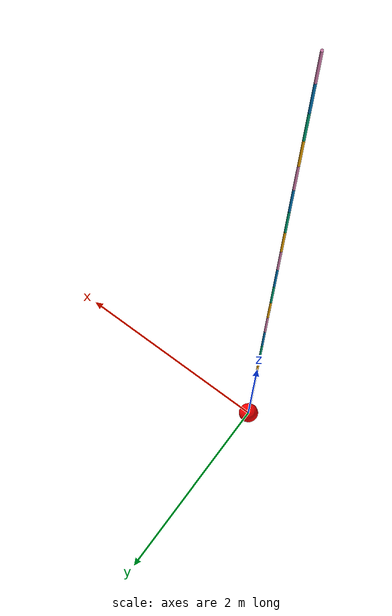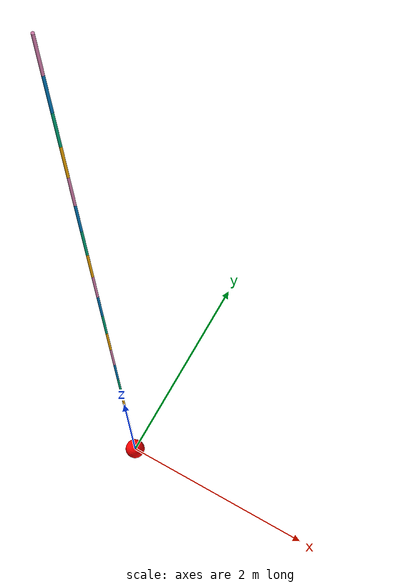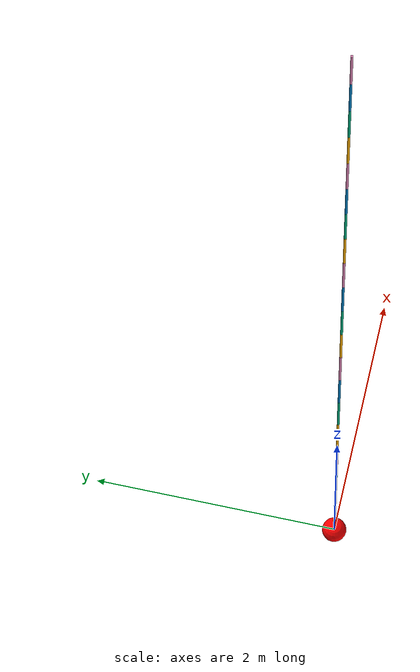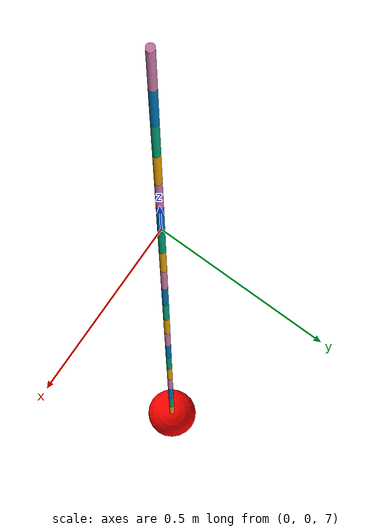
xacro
<?xml version="1.0"?>
<robot xmlns:xacro="http://www.ros.org/wiki/xacro" name="acts_system">

  <xacro:include filename="$(find acts_simulator)/urdf/components/cable_component.xacro" />
  <xacro:include filename="components/pulley.xacro" />

  <link name="world"/>

  <xacro:pulley
    prefix="cable1_"
    parent_link="world" />

  <link name="base_x_link"><inertial><mass value="0.01"/>
    <inertia ixx="1e-5" ixy="0" ixz="0" iyy="1e-5" iyz="0" izz="1e-5"/> </inertial>
  </link>

  <joint name="joint_pulley_x" type="prismatic">
    <parent link="cable1_base_z_link"/>
    <child link="base_x_link"/>
    <origin xyz="0 0 0.0" rpy="0 0 0"/><axis xyz="1 0 0"/>
    <limit effort="1000.0" lower="-10.0" upper="10.0" velocity="2.0"/>
  </joint>

  <link name="base_y_link">
    <inertial>
      <mass value="0.01"/>
      <inertia ixx="1e-5" ixy="0" ixz="0" iyy="1e-5" iyz="0" izz="1e-5"/>
    </inertial>
  </link>

  <joint name="joint_pulley_y" type="prismatic">
    <parent link="base_x_link"/>
    <child link="base_y_link"/>
    <origin xyz="0 0 0" rpy="0 0 0"/><axis xyz="0 1 0"/>
    <limit effort="1000.0" lower="-10.0" upper="10.0" velocity="2.0"/>
  </joint>

  <link name="base_z_link">
    <inertial>
      <mass value="0.01"/>
      <inertia ixx="1e-5" ixy="0" ixz="0" iyy="1e-5" iyz="0" izz="1e-5"/>
    </inertial>
  </link>

  <joint name="joint_pulley_z" type="prismatic">
    <parent link="base_y_link"/>
    <child link="base_z_link"/>
    <origin xyz="0 0 0" rpy="0 0 0"/>
    <axis xyz="0 0 1"/>
    <limit effort="1000.0" lower="-1.2" upper="10.0" velocity="2.0"/>
  </joint>

  <xacro:uav_cable prefix="" parent_link="base_z_link" is_flexible="true" segments="20" length="10" radius="0.01" mass="0.1" />

  <ros2_control name="GazeboSimSystem" type="system">
    <hardware><plugin>gz_ros2_control/GazeboSimSystem</plugin></hardware>
    <joint name="joint_pulley_x"><command_interface name="position"/><state_interface name="position"/></joint>
    <joint name="joint_pulley_y"><command_interface name="position"/><state_interface name="position"/></joint>
    <joint name="joint_pulley_z"><command_interface name="position"/><state_interface name="position"/></joint>
  </ros2_control>

  <gazebo>
    <plugin name="gz_ros2_control::GazeboSimROS2ControlPlugin" filename="libgz_ros2_control-system.so">
      <parameters>$(find acts_simulator)/config/cable_controller.yaml</parameters>
    </plugin>
  </gazebo>
</robot>

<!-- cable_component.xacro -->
<robot xmlns:xacro="http://www.ros.org/wiki/xacro">

  <xacro:macro name="cylinder_inertia" params="m r h">
    <inertial>
      <mass value="${m}"/>
      <inertia ixx="${(m/12) * (3*r*r + h*h)}" ixy="0.0" ixz="0.0"
               iyy="${(m/12) * (3*r*r + h*h)}" iyz="0.0"
               izz="${(m/2) * (r*r)}"/>
    </inertial>
  </xacro:macro>

<xacro:macro name="flexible_chain_generator" params="prefix parent cable_roll:=0 cable_pitch:=0 cable_yaw:=0 current_num total_num cable_len rad m type:='uav'">

  <xacro:property name="dir" value="${-1 if type == 'ugv' else 1}" />

  <link name="${prefix}virtual_${current_num}">
    <inertial>
      <mass value="0.0001"/>
      <inertia ixx="1e-6" ixy="0" ixz="0" iyy="1e-6" iyz="0" izz="1e-6"/>
    </inertial>
  </link>

  <joint name="${prefix}joint_x_${current_num}" type="continuous">
    <parent link="${parent}"/>
    <child link="${prefix}virtual_${current_num}"/>
    <origin xyz="0 0 ${current_num == 1 and 0 or (cable_len * dir)}"
            rpy="${current_num == 1 and cable_roll or 0}
                 ${current_num == 1 and cable_pitch or 0}
                 ${current_num == 1 and cable_yaw or 0}"/>
    <axis xyz="1 0 0"/>
    <dynamics damping="0.01" friction="0.001"/>
  </joint>

  <link name="${prefix}link_${current_num}">
    <xacro:cylinder_inertia m="${m}" r="${rad}" h="${cable_len}" />
    <visual>
      <origin xyz="0 0 ${-cable_len / 2.0 * dir}"/>
      <geometry><cylinder radius="${rad}" length="${cable_len}"/></geometry>
    </visual>
  </link>

  <joint name="${prefix}joint_y_${current_num}" type="continuous">
    <parent link="${prefix}virtual_${current_num}"/>
    <child link="${prefix}link_${current_num}"/>
    <axis xyz="0 1 0"/>
    <dynamics damping="0.01" friction="0.001"/>
  </joint>

  <xacro:if value="${current_num &lt; total_num}">
    <xacro:flexible_chain_generator
      prefix="${prefix}"
      parent="${prefix}link_${current_num}"
      cable_roll="0" cable_pitch="0" cable_yaw="0"
      current_num="${current_num + 1}"
      total_num="${total_num}"
      cable_len="${cable_len}" rad="${rad}" m="${m}"
      type="${type}" />
      </xacro:if>
</xacro:macro>

<xacro:macro name="uav_cable" params="prefix parent_link is_flexible segments length radius mass cable_roll:=0 cable_pitch:=0 cable_yaw:=0">
  <xacro:if value="${is_flexible}">
    <xacro:flexible_chain_generator
      prefix="${prefix}" parent="${parent_link}"
      type="uav"
      cable_roll="${cable_roll}" cable_pitch="${cable_pitch}" cable_yaw="${cable_yaw}"
      current_num="1" total_num="${segments}"
      cable_len="${length/segments}" rad="${radius}" m="${mass/segments}" />
  </xacro:if>
  <xacro:unless value="${is_flexible}">
    <xacro:flexible_chain_generator
      prefix="${prefix}" parent="${parent_link}"
      type="uav"
      cable_roll="${cable_roll}" cable_pitch="${cable_pitch}" cable_yaw="${cable_yaw}"
      current_num="1" total_num="1"
      cable_len="${length}" rad="${radius}" m="${mass}" />
  </xacro:unless>
</xacro:macro>

<xacro:macro name="ugv_cable" params="prefix parent_link is_flexible segments length radius mass cable_roll:=0 cable_pitch:=0 cable_yaw:=0">
  <xacro:if value="${is_flexible}">
    <xacro:flexible_chain_generator
      prefix="${prefix}" parent="${parent_link}"
      type="ugv"
      cable_roll="${cable_roll}" cable_pitch="${cable_pitch}" cable_yaw="${cable_yaw}"
      current_num="1" total_num="${segments}"
      cable_len="${length/segments}" rad="${radius}" m="${mass/segments}" />
  </xacro:if>
  <xacro:unless value="${is_flexible}">
    <xacro:flexible_chain_generator
      prefix="${prefix}" parent="${parent_link}"
      type="ugv"
      cable_roll="${cable_roll}" cable_pitch="${cable_pitch}" cable_yaw="${cable_yaw}"
      current_num="1" total_num="1"
      cable_len="${length}" rad="${radius}" m="${mass}" />
  </xacro:unless>
</xacro:macro>
</robot>

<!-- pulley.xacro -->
<robot xmlns:xacro="http://www.ros.org/wiki/xacro">

  <xacro:macro name="pulley" params="prefix parent_link">

<link name="${prefix}base_x_link"><inertial><mass value="0.01"/>
    <inertia ixx="1e-5" ixy="0" ixz="0" iyy="1e-5" iyz="0" izz="1e-5"/> </inertial>
    <visual>
        <geometry>
            <sphere radius="0.1"/>
        </geometry>
        <material name="blue">
            <color rgba="1.0 0.0 0.0 1.0"/>
        </material>
      </visual>

  </link>

  <joint name="${prefix}joint_pulley_x" type="prismatic">
    <parent link="${parent_link}"/>
    <child link="${prefix}base_x_link"/>
    <origin xyz="0 0 0.0" rpy="0 0 0"/><axis xyz="1 0 0"/>
    <limit effort="1000.0" lower="-10.0" upper="10.0" velocity="2.0"/>
    <dynamics damping="10.0" friction="0.5"/>
  </joint>

  <link name="${prefix}base_y_link">
    <inertial>
      <mass value="0.01"/>
      <inertia ixx="1e-5" ixy="0" ixz="0" iyy="1e-5" iyz="0" izz="1e-5"/>
    </inertial>
  </link>

  <joint name="${prefix}joint_pulley_y" type="prismatic">
    <parent link="${prefix}base_x_link"/>
    <child link="${prefix}base_y_link"/>
    <origin xyz="0 0 0" rpy="0 0 0"/><axis xyz="0 1 0"/>
    <limit effort="1000.0" lower="-10.0" upper="10.0" velocity="2.0"/>
    <dynamics damping="10.0" friction="0.5"/>
  </joint>

  <link name="${prefix}base_z_link">
    <inertial>
      <mass value="0.01"/>
      <inertia ixx="1e-5" ixy="0" ixz="0" iyy="1e-5" iyz="0" izz="1e-5"/>
    </inertial>
  </link>

  <joint name="${prefix}joint_pulley_z" type="prismatic">
    <parent link="${prefix}base_y_link"/>
    <child link="${prefix}base_z_link"/>
    <origin xyz="0 0 0" rpy="0 0 0"/>
    <axis xyz="0 0 1"/>
    <limit effort="1000.0" lower="-20" upper="20.0" velocity="2.0"/>
    <dynamics damping="10.0" friction="0.5"/>
  </joint>

    <ros2_control name="${prefix}GazeboSimSystem" type="system">
    <hardware>
      <plugin>gz_ros2_control/GazeboSimSystem</plugin>
    </hardware>

    <joint name="${prefix}joint_pulley_x">
      <command_interface name="position"/>
      <state_interface name="position"/>
      <state_interface name="velocity"/>
    </joint>
    <joint name="${prefix}joint_pulley_y">
      <command_interface name="position"/>
      <state_interface name="position"/>
      <state_interface name="velocity"/>
    </joint>
    <joint name="${prefix}joint_pulley_z">
      <command_interface name="position"/>
      <state_interface name="position"/>
      <state_interface name="velocity"/>
    </joint>
  </ros2_control>

  <gazebo>
    <plugin filename="gz_ros2_control-system" name="gz_ros2_control::GazeboSimROS2ControlPlugin">
      </plugin>
  </gazebo>

</xacro:macro>

</robot>
